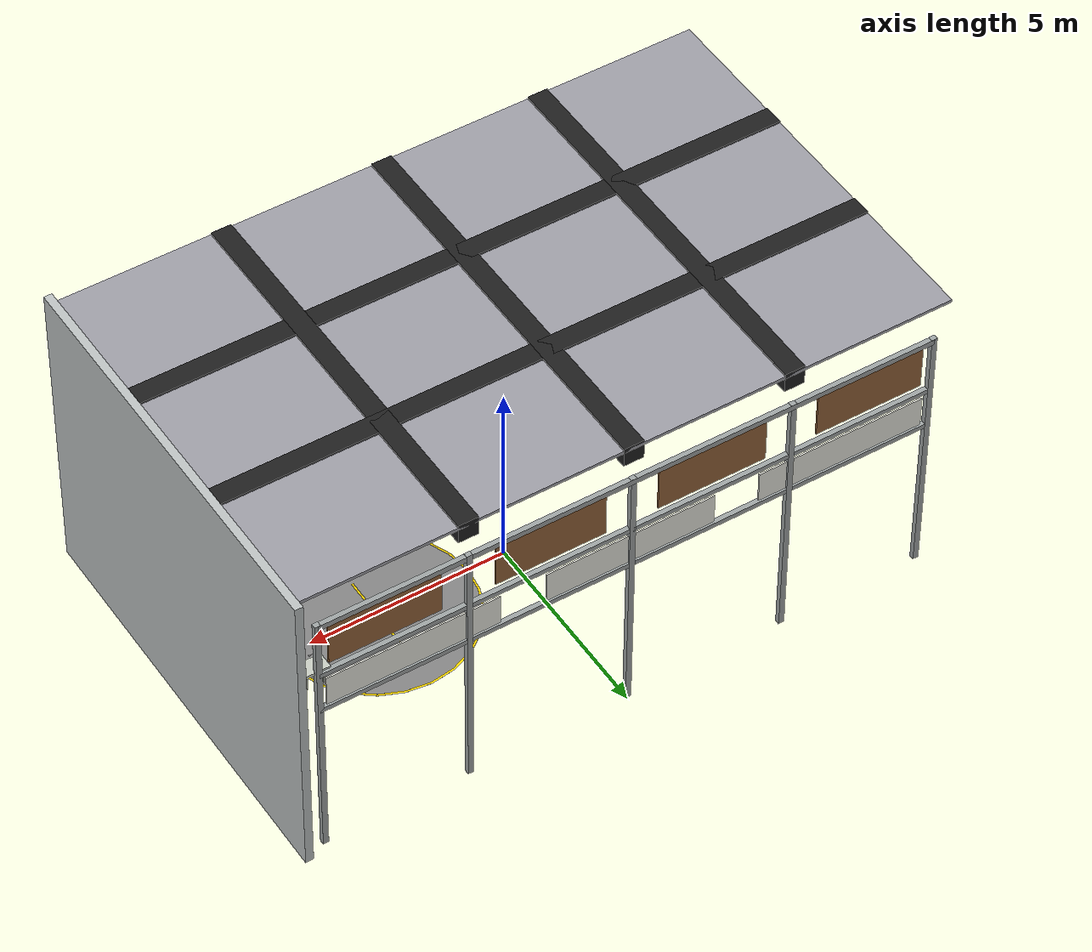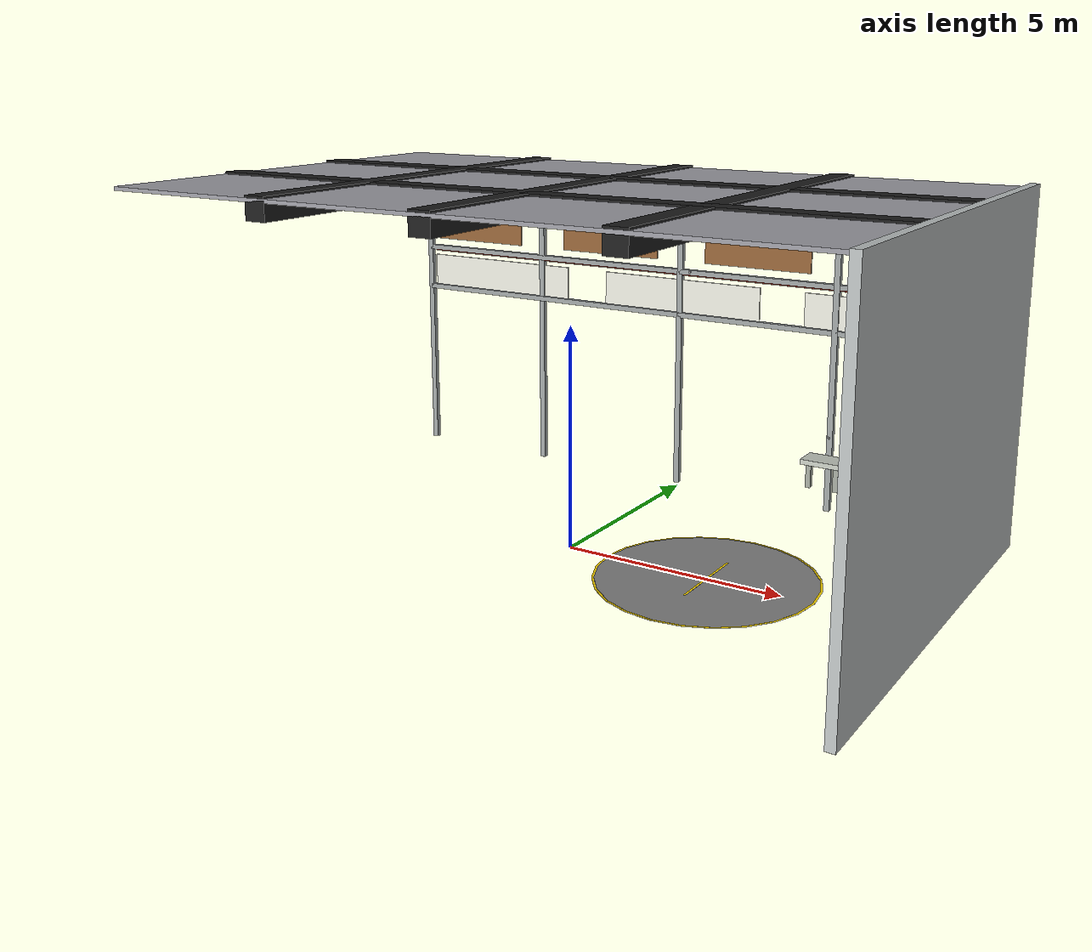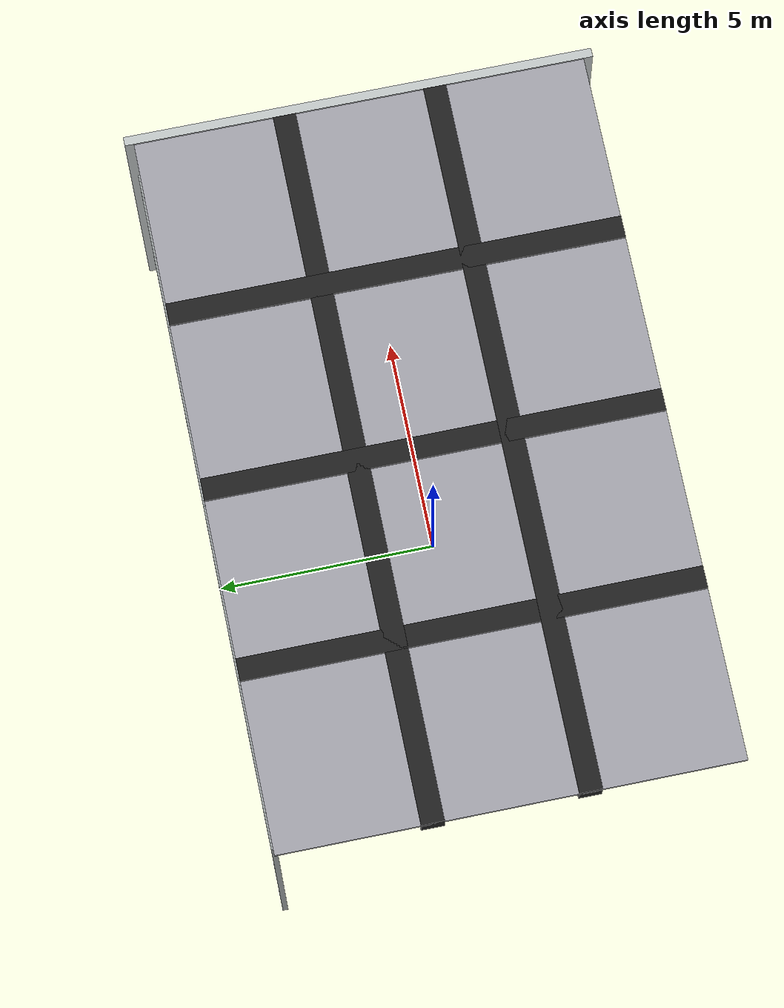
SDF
<sdf version="1.9">
 <world name="drone_hangar_small">
  <model name="ground_plane">
   <static>true</static>
   <link name="link">
    <collision name="collision">
     <geometry><plane><normal>0 0 1</normal><size>16.0 10.0</size></plane></geometry>
    </collision>
   </link>
  </model>
  <model name="pad_2_ring">
   <static>true</static>
   <pose>3.33 0 0.003 0 0 0</pose>
   <link name="link">
    <visual name="v">
     <visibility_flags>2</visibility_flags>
     <geometry><cylinder><radius>2.4</radius><length>0.002</length></cylinder></geometry>
     <material><ambient>1.0 0.85 0.0 1</ambient><diffuse>1.0 0.85 0.0 1</diffuse></material>
    </visual>
   </link>
  </model>
  <model name="pad_2_fill">
   <static>true</static>
   <pose>3.33 0 0.004 0 0 0</pose>
   <link name="link">
    <visual name="v">
     <visibility_flags>2</visibility_flags>
     <geometry><cylinder><radius>2.35</radius><length>0.002</length></cylinder></geometry>
     <material><ambient>0.52 0.52 0.52 1</ambient><diffuse>0.52 0.52 0.52 1</diffuse></material>
    </visual>
   </link>
  </model>
  <model name="pad_2_cross_h">
   <static>true</static>
   <pose>3.33 0 0.006 0 0 0</pose>
   <link name="link">
    <visual name="v">
     <visibility_flags>2</visibility_flags>
     <geometry><box><size>2.0 0.05 0.002</size></box></geometry>
     <material><ambient>1.0 0.85 0.0 1</ambient><diffuse>1.0 0.85 0.0 1</diffuse></material>
    </visual>
   </link>
  </model>
  <model name="pad_2_cross_v">
   <static>true</static>
   <pose>3.33 0 0.006 0 0 0</pose>
   <link name="link">
    <visual name="v">
     <visibility_flags>2</visibility_flags>
     <geometry><box><size>0.05 2.0 0.002</size></box></geometry>
     <material><ambient>1.0 0.85 0.0 1</ambient><diffuse>1.0 0.85 0.0 1</diffuse></material>
    </visual>
   </link>
  </model>
  <model name="wall_north">
   <static>true</static>
   <pose>8.1 0 4.0 0 0 0</pose>
   <link name="link">
    <collision name="c"><geometry><box><size>0.2 10.4 8.0</size></box></geometry></collision>
    <visual name="v">
     <geometry><box><size>0.2 10.4 8.0</size></box></geometry>
     <material>
      <ambient>0.74 0.76 0.76 1</ambient>
      <diffuse>0.74 0.76 0.76 1</diffuse>
      <specular>0.20 0.20 0.20 1</specular>
      <emissive>0.06 0.06 0.06 1</emissive>
     </material>
    </visual>
   </link>
  </model>
  <model name="wall_east_inner_structure">
   <static>true</static>
   <pose>0 4.98 0 0 0 0</pose>
   <link name="link">
    <visual name="clerestory_white_panel_1">
     <pose>-5.33 0 4.85 0 0 0</pose>
     <geometry><box><size>4.2 0.035 0.8</size></box></geometry>
     <material>
      <ambient>0.92 0.92 0.88 1</ambient>
      <diffuse>0.92 0.92 0.88 1</diffuse>
      <emissive>0.18 0.18 0.16 1</emissive>
     </material>
    </visual>
    <visual name="clerestory_white_panel_2">
     <pose>0.0 0 4.85 0 0 0</pose>
     <geometry><box><size>4.2 0.035 0.8</size></box></geometry>
     <material>
      <ambient>0.92 0.92 0.88 1</ambient>
      <diffuse>0.92 0.92 0.88 1</diffuse>
      <emissive>0.18 0.18 0.16 1</emissive>
     </material>
    </visual>
    <visual name="clerestory_white_panel_3">
     <pose>5.33 0 4.85 0 0 0</pose>
     <geometry><box><size>4.2 0.035 0.8</size></box></geometry>
     <material>
      <ambient>0.92 0.92 0.88 1</ambient>
      <diffuse>0.92 0.92 0.88 1</diffuse>
      <emissive>0.18 0.18 0.16 1</emissive>
     </material>
    </visual>
    <visual name="louver_panel_1">
     <pose>-6.0 0 6.25 0 0 0</pose>
     <geometry><box><size>2.7 0.04 1.1</size></box></geometry>
     <material>
      <ambient>0.58 0.39 0.22 1</ambient>
      <diffuse>0.58 0.39 0.22 1</diffuse>
      <specular>0.08 0.06 0.04 1</specular>
     </material>
    </visual>
    <visual name="louver_panel_2">
     <pose>-2.0 0 6.25 0 0 0</pose>
     <geometry><box><size>2.7 0.04 1.1</size></box></geometry>
     <material>
      <ambient>0.58 0.39 0.22 1</ambient>
      <diffuse>0.58 0.39 0.22 1</diffuse>
      <specular>0.08 0.06 0.04 1</specular>
     </material>
    </visual>
    <visual name="louver_panel_3">
     <pose>2.0 0 6.25 0 0 0</pose>
     <geometry><box><size>2.7 0.04 1.1</size></box></geometry>
     <material>
      <ambient>0.58 0.39 0.22 1</ambient>
      <diffuse>0.58 0.39 0.22 1</diffuse>
      <specular>0.08 0.06 0.04 1</specular>
     </material>
    </visual>
    <visual name="louver_panel_4">
     <pose>6.0 0 6.25 0 0 0</pose>
     <geometry><box><size>2.7 0.04 1.1</size></box></geometry>
     <material>
      <ambient>0.58 0.39 0.22 1</ambient>
      <diffuse>0.58 0.39 0.22 1</diffuse>
      <specular>0.08 0.06 0.04 1</specular>
     </material>
    </visual>
    <visual name="frame_post_1">
     <pose>-7.6 0 3.55 0 0 0</pose>
     <geometry><box><size>0.14 0.12 6.9</size></box></geometry>
     <material>
      <ambient>0.62 0.64 0.64 1</ambient>
      <diffuse>0.62 0.64 0.64 1</diffuse>
      <specular>0.25 0.25 0.25 1</specular>
      <emissive>0.04 0.04 0.04 1</emissive>
     </material>
    </visual>
    <visual name="frame_post_2">
     <pose>-4.0 0 3.55 0 0 0</pose>
     <geometry><box><size>0.14 0.12 6.9</size></box></geometry>
     <material>
      <ambient>0.62 0.64 0.64 1</ambient>
      <diffuse>0.62 0.64 0.64 1</diffuse>
      <specular>0.25 0.25 0.25 1</specular>
      <emissive>0.04 0.04 0.04 1</emissive>
     </material>
    </visual>
    <visual name="frame_post_3">
     <pose>0.0 0 3.55 0 0 0</pose>
     <geometry><box><size>0.14 0.12 6.9</size></box></geometry>
     <material>
      <ambient>0.62 0.64 0.64 1</ambient>
      <diffuse>0.62 0.64 0.64 1</diffuse>
      <specular>0.25 0.25 0.25 1</specular>
      <emissive>0.04 0.04 0.04 1</emissive>
     </material>
    </visual>
    <visual name="frame_post_4">
     <pose>4.0 0 3.55 0 0 0</pose>
     <geometry><box><size>0.14 0.12 6.9</size></box></geometry>
     <material>
      <ambient>0.62 0.64 0.64 1</ambient>
      <diffuse>0.62 0.64 0.64 1</diffuse>
      <specular>0.25 0.25 0.25 1</specular>
      <emissive>0.04 0.04 0.04 1</emissive>
     </material>
    </visual>
    <visual name="frame_post_5">
     <pose>7.6 0 3.55 0 0 0</pose>
     <geometry><box><size>0.14 0.12 6.9</size></box></geometry>
     <material>
      <ambient>0.62 0.64 0.64 1</ambient>
      <diffuse>0.62 0.64 0.64 1</diffuse>
      <specular>0.25 0.25 0.25 1</specular>
      <emissive>0.04 0.04 0.04 1</emissive>
     </material>
    </visual>
    <visual name="frame_bottom_rail">
     <pose>0 0 4.38 0 0 0</pose>
     <geometry><box><size>15.2 0.12 0.12</size></box></geometry>
     <material>
      <ambient>0.62 0.64 0.64 1</ambient>
      <diffuse>0.62 0.64 0.64 1</diffuse>
      <specular>0.25 0.25 0.25 1</specular>
      <emissive>0.04 0.04 0.04 1</emissive>
     </material>
    </visual>
    <visual name="frame_mid_rail">
     <pose>0 0 5.45 0 0 0</pose>
     <geometry><box><size>15.2 0.12 0.12</size></box></geometry>
     <material>
      <ambient>0.62 0.64 0.64 1</ambient>
      <diffuse>0.62 0.64 0.64 1</diffuse>
      <specular>0.25 0.25 0.25 1</specular>
      <emissive>0.04 0.04 0.04 1</emissive>
     </material>
    </visual>
    <visual name="frame_top_rail">
     <pose>0 0 6.92 0 0 0</pose>
     <geometry><box><size>15.2 0.12 0.14</size></box></geometry>
     <material>
      <ambient>0.62 0.64 0.64 1</ambient>
      <diffuse>0.62 0.64 0.64 1</diffuse>
      <specular>0.25 0.25 0.25 1</specular>
      <emissive>0.04 0.04 0.04 1</emissive>
     </material>
    </visual>
    <visual name="thin_red_pipe">
     <pose>0 -0.01 5.38 0 0 0</pose>
     <geometry><box><size>14.8 0.04 0.04</size></box></geometry>
     <material><ambient>0.45 0.12 0.07 1</ambient><diffuse>0.45 0.12 0.07 1</diffuse></material>
    </visual>
   </link>
  </model>
  <model name="pigeon_corner_shelf">
   <static>true</static>
   <pose>7.65 4.78 5.52 0 0 0</pose>
   <link name="link">
    <collision name="shelf_collision"><geometry><box><size>0.70 0.40 0.08</size></box></geometry></collision>
    <visual name="shelf_visual">
     <geometry><box><size>0.70 0.40 0.08</size></box></geometry>
     <material>
      <ambient>0.78 0.80 0.76 1</ambient>
      <diffuse>0.78 0.80 0.76 1</diffuse>
      <specular>0.18 0.18 0.16 1</specular>
      <emissive>0.10 0.10 0.09 1</emissive>
     </material>
    </visual>
    <collision name="left_bracket_collision">
     <pose>-0.22 0.14 -0.22 0 0 0</pose>
     <geometry><box><size>0.08 0.08 0.36</size></box></geometry>
    </collision>
    <visual name="left_bracket_visual">
     <pose>-0.22 0.14 -0.22 0 0 0</pose>
     <geometry><box><size>0.08 0.08 0.36</size></box></geometry>
     <material>
      <ambient>0.64 0.66 0.62 1</ambient>
      <diffuse>0.64 0.66 0.62 1</diffuse>
      <specular>0.16 0.16 0.14 1</specular>
      <emissive>0.06 0.06 0.05 1</emissive>
     </material>
    </visual>
    <collision name="right_bracket_collision">
     <pose>0.22 0.14 -0.22 0 0 0</pose>
     <geometry><box><size>0.08 0.08 0.36</size></box></geometry>
    </collision>
    <visual name="right_bracket_visual">
     <pose>0.22 0.14 -0.22 0 0 0</pose>
     <geometry><box><size>0.08 0.08 0.36</size></box></geometry>
     <material>
      <ambient>0.64 0.66 0.62 1</ambient>
      <diffuse>0.64 0.66 0.62 1</diffuse>
      <specular>0.16 0.16 0.14 1</specular>
      <emissive>0.06 0.06 0.05 1</emissive>
     </material>
    </visual>
   </link>
  </model>
  <model name="pigeon_corner_shelf_mirror">
   <static>true</static>
   <pose>7.65 -4.78 4.62 0 0 0</pose>
   <link name="link">
    <collision name="shelf_collision"><geometry><box><size>0.70 0.40 0.08</size></box></geometry></collision>
    <visual name="shelf_visual">
     <geometry><box><size>0.70 0.40 0.08</size></box></geometry>
     <material>
      <ambient>0.78 0.80 0.76 1</ambient>
      <diffuse>0.78 0.80 0.76 1</diffuse>
      <specular>0.18 0.18 0.16 1</specular>
      <emissive>0.10 0.10 0.09 1</emissive>
     </material>
    </visual>
    <collision name="left_bracket_collision">
     <pose>-0.22 -0.14 -0.22 0 0 0</pose>
     <geometry><box><size>0.08 0.08 0.36</size></box></geometry>
    </collision>
    <visual name="left_bracket_visual">
     <pose>-0.22 -0.14 -0.22 0 0 0</pose>
     <geometry><box><size>0.08 0.08 0.36</size></box></geometry>
     <material>
      <ambient>0.64 0.66 0.62 1</ambient>
      <diffuse>0.64 0.66 0.62 1</diffuse>
      <specular>0.16 0.16 0.14 1</specular>
      <emissive>0.06 0.06 0.05 1</emissive>
     </material>
    </visual>
    <collision name="right_bracket_collision">
     <pose>0.22 -0.14 -0.22 0 0 0</pose>
     <geometry><box><size>0.08 0.08 0.36</size></box></geometry>
    </collision>
    <visual name="right_bracket_visual">
     <pose>0.22 -0.14 -0.22 0 0 0</pose>
     <geometry><box><size>0.08 0.08 0.36</size></box></geometry>
     <material>
      <ambient>0.64 0.66 0.62 1</ambient>
      <diffuse>0.64 0.66 0.62 1</diffuse>
      <specular>0.16 0.16 0.14 1</specular>
      <emissive>0.06 0.06 0.05 1</emissive>
     </material>
    </visual>
   </link>
  </model>
  <model name="ceiling_beam_grid">
   <static>true</static>
   <link name="link">
    <collision name="c_small_m4">
     <pose>-4 0 7.75 0 0 0</pose>
     <geometry><box><size>0.5 10.0 0.5</size></box></geometry>
    </collision>
    <visual name="v_small_m4">
     <pose>-4 0 7.75 0 0 0</pose>
     <geometry><box><size>0.5 10.0 0.5</size></box></geometry>
     <material><ambient>0.12 0.12 0.12 1</ambient><diffuse>0.12 0.12 0.12 1</diffuse></material>
    </visual>
    <collision name="c_small_0">
     <pose>0 0 7.75 0 0 0</pose>
     <geometry><box><size>0.5 10.0 0.5</size></box></geometry>
    </collision>
    <visual name="v_small_0">
     <pose>0 0 7.75 0 0 0</pose>
     <geometry><box><size>0.5 10.0 0.5</size></box></geometry>
     <material><ambient>0.12 0.12 0.12 1</ambient><diffuse>0.12 0.12 0.12 1</diffuse></material>
    </visual>
    <collision name="c_small_4">
     <pose>4 0 7.75 0 0 0</pose>
     <geometry><box><size>0.5 10.0 0.5</size></box></geometry>
    </collision>
    <visual name="v_small_4">
     <pose>4 0 7.75 0 0 0</pose>
     <geometry><box><size>0.5 10.0 0.5</size></box></geometry>
     <material><ambient>0.12 0.12 0.12 1</ambient><diffuse>0.12 0.12 0.12 1</diffuse></material>
    </visual>
    <collision name="c_long_m1p7">
     <pose>0 -1.67 7.75 0 0 0</pose>
     <geometry><box><size>16.0 0.5 0.5</size></box></geometry>
    </collision>
    <visual name="v_long_m1p7">
     <pose>0 -1.67 7.75 0 0 0</pose>
     <geometry><box><size>16.0 0.5 0.5</size></box></geometry>
     <material><ambient>0.12 0.12 0.12 1</ambient><diffuse>0.12 0.12 0.12 1</diffuse></material>
    </visual>
    <collision name="c_long_1p7">
     <pose>0 1.67 7.75 0 0 0</pose>
     <geometry><box><size>16.0 0.5 0.5</size></box></geometry>
    </collision>
    <visual name="v_long_1p7">
     <pose>0 1.67 7.75 0 0 0</pose>
     <geometry><box><size>16.0 0.5 0.5</size></box></geometry>
     <material><ambient>0.12 0.12 0.12 1</ambient><diffuse>0.12 0.12 0.12 1</diffuse></material>
    </visual>
   </link>
  </model>
  <model name="ceiling_mesh_net_collision">
   <static>true</static>
   <pose>0 0 7.91 0 0 0</pose>
   <link name="link">
    <collision name="c"><geometry><box><size>16.0 10.0 0.08</size></box></geometry></collision>
    <visual name="rangefinder_target">
     <geometry><box><size>16.0 10.0 0.08</size></box></geometry>
     <material>
      <ambient>0.62 0.62 0.65 1</ambient>
      <diffuse>0.62 0.62 0.65 1</diffuse>
      <specular>0.05 0.05 0.05 1</specular>
     </material>
    </visual>
   </link>
  </model>
  <model name="roof_panels">
   <static>true</static>
   <pose>0 0 8.1 0 0 0</pose>
   <link name="link">
    <visual name="v">
     <geometry><plane><normal>0 0 1</normal><size>16.0 10.0</size></plane></geometry>
     <material><ambient>0.65 0.65 0.68 1</ambient><diffuse>0.65 0.65 0.68 1</diffuse></material>
    </visual>
   </link>
  </model>
  <include><uri>model://pigeon_3d</uri><name>pigeon_1</name><pose>7.65 4.76 5.90 0 0 -3.1416</pose></include>
  <include><uri>model://pigeon_3d</uri><name>pigeon_2</name><pose>7.65 -4.76 5.00 0 0 -3.1416</pose></include>
  <include>
   <uri>model://mono_cam_hd</uri>
   <name>center_cam</name>
   <pose>4.33 -3 7 0 1.5708 0</pose>
   <static>true</static>
  </include>
 </world>
</sdf>
